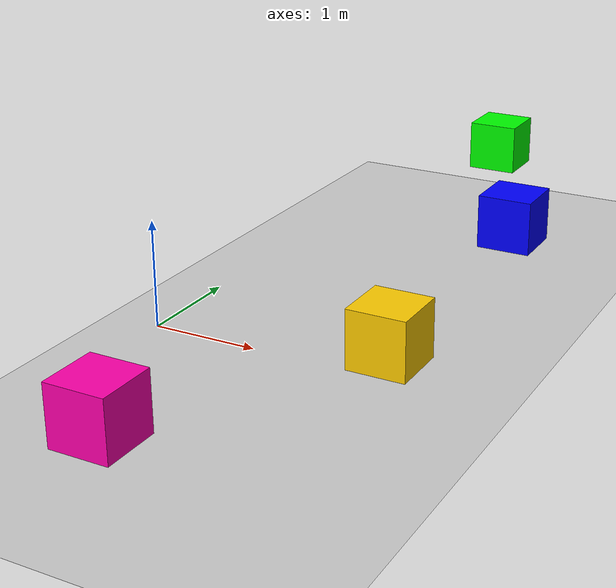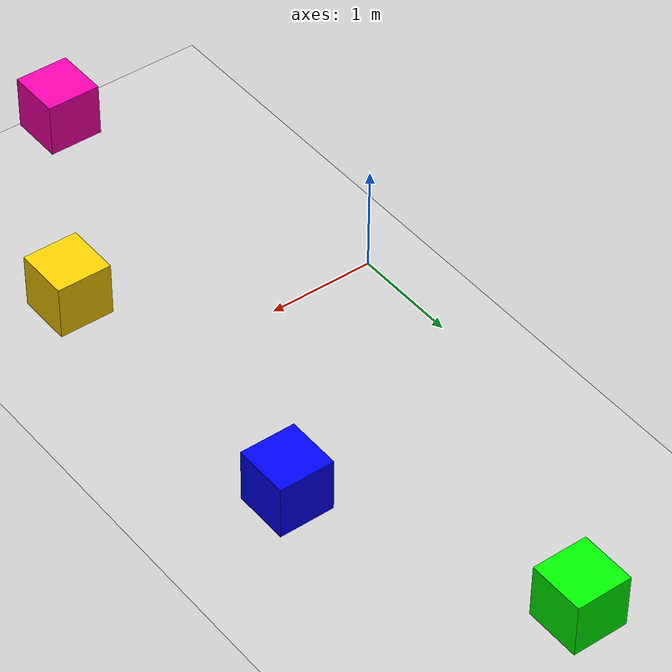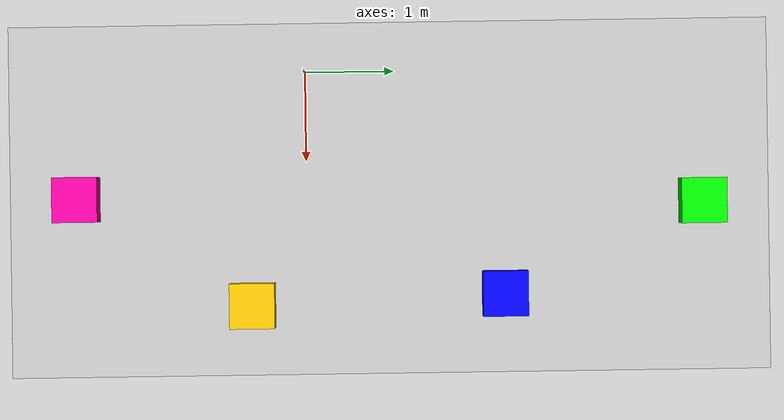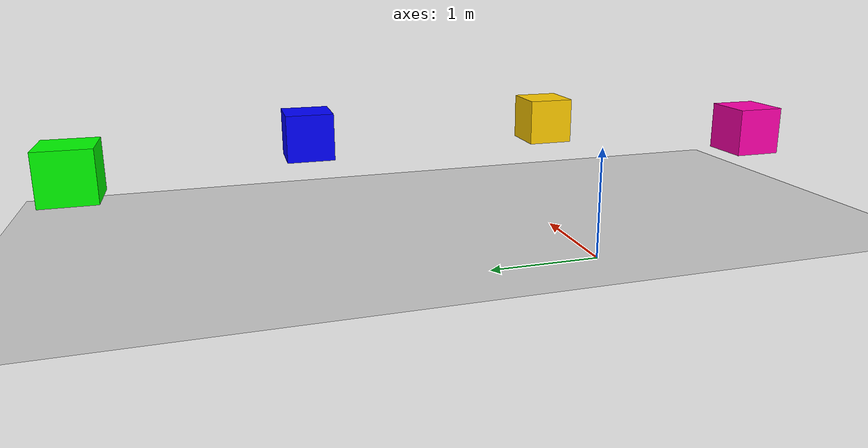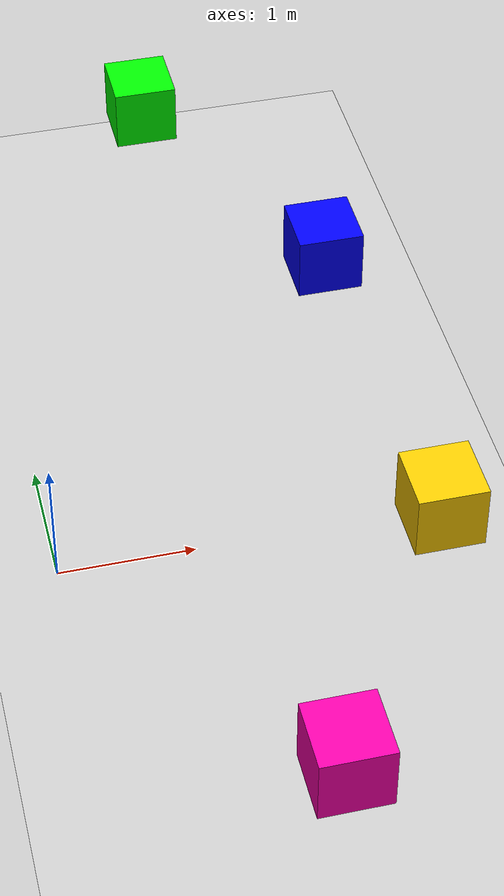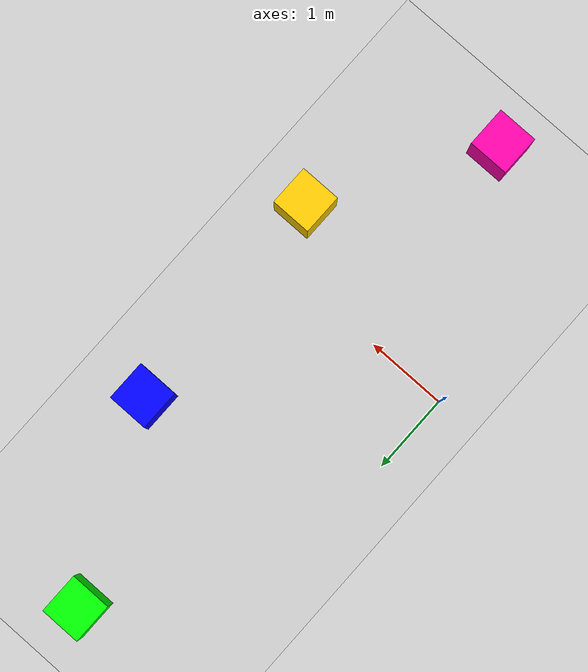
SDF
<sdf version="1.4">
  <world name="default">
    <scene>
      <ambient>0.8 0.8 0.8 1</ambient>
      <background>0.7 0.7 0.7 1</background>
      <shadows>true</shadows>
    </scene>

    <!-- A global light source -->
    <include>
      <uri>model://sun</uri>
      <pose> -2.0 2.0 2.0 0 0 0</pose>
    </include>

    <!-- A ground plane -->
    <include>
      <uri>model://ground_plane</uri>
    </include>

  <!-- caixa_majenta -->
    <include>
      <uri>model://caixas/caixa_majenta</uri>
      <pose> 1.4 -2.54 0.75 0 0 0</pose>
    </include>

  <!-- caixa_verde -->
    <include>
      <uri>model://caixas/caixa_verde</uri>
      <pose> 1.5 4.4 0.75 0 0 0</pose>
    </include>

  <!-- caixa_azul -->
    <include>
      <uri>model://caixas/caixa_azul</uri>
      <pose> 2.5 2.2 0.75 0 0 0</pose>
    </include>

 <!-- caixa_amarela -->
    <include>
      <uri>model://caixas/caixa_amarela</uri>
      <pose> 2.6 -0.6 0.75 0 0 0</pose>
    </include>

    <physics type="ode">
      <real_time_update_rate>1000.0</real_time_update_rate>
      <max_step_size>0.001</max_step_size>
      <real_time_factor>1</real_time_factor>
      <ode>
        <solver>
          <type>quick</type>
          <iters>150</iters>
          <precon_iters>0</precon_iters>
          <sor>1.400000</sor>
          <use_dynamic_moi_rescaling>1</use_dynamic_moi_rescaling>
        </solver>
        <constraints>
          <cfm>0.00001</cfm>
          <erp>0.2</erp>
          <contact_max_correcting_vel>2000.000000</contact_max_correcting_vel>
          <contact_surface_layer>0.01000</contact_surface_layer>
        </constraints>
      </ode>
    </physics>

    <gui fullscreen='0'>
      <camera name='user_camera'>
        <pose frame=''>0.238775 -6.8831 10.8485 -0 0.979642 1.5602</pose>
        <view_controller>orbit</view_controller>
        <projection_type>perspective</projection_type>
      </camera>
    </gui>

  </world>

</sdf>

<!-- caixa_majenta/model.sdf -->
<sdf version='1.6'>
  <model name='cubo_majenta'>
    <link name='link'>
      <inertial>
        <mass>1</mass>
        <inertia>
          <ixx>0.166667</ixx>
          <ixy>0</ixy>
          <ixz>0</ixz>
          <iyy>0.166667</iyy>
          <iyz>0</iyz>
          <izz>0.166667</izz>
        </inertia>
        <pose frame=''>0 0 0 0 -0 0</pose>
      </inertial>
      <self_collide>0</self_collide>
      <enable_wind>0</enable_wind>
      <kinematic>0</kinematic>
      <pose frame=''>0 0 0 0 -0 0</pose>
      <gravity>1</gravity>
      <visual name='visual'>
        <geometry>
          <box>
            <size>0.5 0.5 0.5</size>
          </box>
        </geometry>
        <material>
          <script>
            <name>Gazebo/Grey</name>
            <uri>file://media/materials/scripts/gazebo.material</uri>
          </script>
          <shader type='vertex'>
            <normal_map>__default__</normal_map>
          </shader>
          <ambient>1 0 0.67 1</ambient>
          <diffuse>1 0 0.67 1</diffuse>
          <specular>1 0 0.67 1</specular>
          <emissive>1 0 0.67 1</emissive>
        </material>
        <pose frame=''>0 0 0 0 -0 0</pose>
        <transparency>0</transparency>
        <cast_shadows>1</cast_shadows>
      </visual>
      <collision name='collision'>
        <laser_retro>0</laser_retro>
        <max_contacts>10</max_contacts>
        <pose frame=''>0 0 0 0 -0 0</pose>
        <geometry>
          <box>
            <size>0.5 0.5 0.5</size>
          </box>
        </geometry>
        <surface>
          <friction>
            <ode>
              <mu>1</mu>
              <mu2>1</mu2>
              <fdir1>0 0 0</fdir1>
              <slip1>0</slip1>
              <slip2>0</slip2>
            </ode>
            <torsional>
              <coefficient>1</coefficient>
              <patch_radius>0</patch_radius>
              <surface_radius>0</surface_radius>
              <use_patch_radius>1</use_patch_radius>
              <ode>
                <slip>0</slip>
              </ode>
            </torsional>
          </friction>
          <bounce>
            <restitution_coefficient>0</restitution_coefficient>
            <threshold>1e+06</threshold>
          </bounce>
          <contact>
            <collide_without_contact>0</collide_without_contact>
            <collide_without_contact_bitmask>1</collide_without_contact_bitmask>
            <collide_bitmask>1</collide_bitmask>
            <ode>
              <soft_cfm>0</soft_cfm>
              <soft_erp>0.2</soft_erp>
              <kp>1e+13</kp>
              <kd>1</kd>
              <max_vel>0.01</max_vel>
              <min_depth>0</min_depth>
            </ode>
            <bullet>
              <split_impulse>1</split_impulse>
              <split_impulse_penetration_threshold>-0.01</split_impulse_penetration_threshold>
              <soft_cfm>0</soft_cfm>
              <soft_erp>0.2</soft_erp>
              <kp>1e+13</kp>
              <kd>1</kd>
            </bullet>
          </contact>
        </surface>
      </collision>
    </link>
    <static>0</static>
    <allow_auto_disable>1</allow_auto_disable>
  </model>
</sdf>

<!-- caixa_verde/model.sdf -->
<sdf version='1.6'>
  <model name='cubo_verde'>
    <link name='link'>
      <inertial>
        <mass>1</mass>
        <inertia>
          <ixx>0.166667</ixx>
          <ixy>0</ixy>
          <ixz>0</ixz>
          <iyy>0.166667</iyy>
          <iyz>0</iyz>
          <izz>0.166667</izz>
        </inertia>
        <pose frame=''>0 0 0 0 -0 0</pose>
      </inertial>
      <self_collide>0</self_collide>
      <enable_wind>0</enable_wind>
      <kinematic>0</kinematic>
      <pose frame=''>0 0 0 0 -0 0</pose>
      <gravity>1</gravity>
      <visual name='visual'>
        <geometry>
          <box>
            <size>0.5 0.5 0.5</size>
          </box>
        </geometry>
        <material>
          <script>
            <name>Gazebo/Grey</name>
            <uri>file://media/materials/scripts/gazebo.material</uri>
          </script>
          <shader type='vertex'>
            <normal_map>__default__</normal_map>
          </shader>
          <ambient>0 1 0 1</ambient>
          <diffuse>0 1 0 1</diffuse>
          <specular>0 1 0 1</specular>
          <emissive>0 1 0 1</emissive>
        </material>
        <pose frame=''>0 0 0 0 -0 0</pose>
        <transparency>0</transparency>
        <cast_shadows>1</cast_shadows>
      </visual>
      <collision name='collision'>
        <laser_retro>0</laser_retro>
        <max_contacts>10</max_contacts>
        <pose frame=''>0 0 0 0 -0 0</pose>
        <geometry>
          <box>
            <size>0.5 0.5 0.5</size>
          </box>
        </geometry>
        <surface>
          <friction>
            <ode>
              <mu>1</mu>
              <mu2>1</mu2>
              <fdir1>0 0 0</fdir1>
              <slip1>0</slip1>
              <slip2>0</slip2>
            </ode>
            <torsional>
              <coefficient>1</coefficient>
              <patch_radius>0</patch_radius>
              <surface_radius>0</surface_radius>
              <use_patch_radius>1</use_patch_radius>
              <ode>
                <slip>0</slip>
              </ode>
            </torsional>
          </friction>
          <bounce>
            <restitution_coefficient>0</restitution_coefficient>
            <threshold>1e+06</threshold>
          </bounce>
          <contact>
            <collide_without_contact>0</collide_without_contact>
            <collide_without_contact_bitmask>1</collide_without_contact_bitmask>
            <collide_bitmask>1</collide_bitmask>
            <ode>
              <soft_cfm>0</soft_cfm>
              <soft_erp>0.2</soft_erp>
              <kp>1e+13</kp>
              <kd>1</kd>
              <max_vel>0.01</max_vel>
              <min_depth>0</min_depth>
            </ode>
            <bullet>
              <split_impulse>1</split_impulse>
              <split_impulse_penetration_threshold>-0.01</split_impulse_penetration_threshold>
              <soft_cfm>0</soft_cfm>
              <soft_erp>0.2</soft_erp>
              <kp>1e+13</kp>
              <kd>1</kd>
            </bullet>
          </contact>
        </surface>
      </collision>
    </link>
    <static>0</static>
    <allow_auto_disable>1</allow_auto_disable>
  </model>
</sdf>

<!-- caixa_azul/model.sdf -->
<sdf version='1.6'>
  <model name='cubo_azul'>
    <link name='link'>
      <inertial>
        <mass>1</mass>
        <inertia>
          <ixx>0.166667</ixx>
          <ixy>0</ixy>
          <ixz>0</ixz>
          <iyy>0.166667</iyy>
          <iyz>0</iyz>
          <izz>0.166667</izz>
        </inertia>
        <pose frame=''>0 0 0 0 -0 0</pose>
      </inertial>
      <self_collide>0</self_collide>
      <enable_wind>0</enable_wind>
      <kinematic>0</kinematic>
      <pose frame=''>0 0 0 0 -0 0</pose>
      <gravity>1</gravity>
      <visual name='visual'>
        <geometry>
          <box>
            <size>0.5 0.5 0.5</size>
          </box>
        </geometry>
        <material>
          <script>
            <name>Gazebo/Grey</name>
            <uri>file://media/materials/scripts/gazebo.material</uri>
          </script>
          <shader type='vertex'>
            <normal_map>__default__</normal_map>
          </shader>
          <ambient>0 0 1 1</ambient>
          <diffuse>0 0 1 1</diffuse>
          <specular>0 0 1 1</specular>
          <emissive>0 0 1 1</emissive>
        </material>
        <pose frame=''>0 0 0 0 -0 0</pose>
        <transparency>0</transparency>
        <cast_shadows>1</cast_shadows>
      </visual>
      <collision name='collision'>
        <laser_retro>0</laser_retro>
        <max_contacts>10</max_contacts>
        <pose frame=''>0 0 0 0 -0 0</pose>
        <geometry>
          <box>
            <size>0.5 0.5 0.5</size>
          </box>
        </geometry>
        <surface>
          <friction>
            <ode>
              <mu>1</mu>
              <mu2>1</mu2>
              <fdir1>0 0 0</fdir1>
              <slip1>0</slip1>
              <slip2>0</slip2>
            </ode>
            <torsional>
              <coefficient>1</coefficient>
              <patch_radius>0</patch_radius>
              <surface_radius>0</surface_radius>
              <use_patch_radius>1</use_patch_radius>
              <ode>
                <slip>0</slip>
              </ode>
            </torsional>
          </friction>
          <bounce>
            <restitution_coefficient>0</restitution_coefficient>
            <threshold>1e+06</threshold>
          </bounce>
          <contact>
            <collide_without_contact>0</collide_without_contact>
            <collide_without_contact_bitmask>1</collide_without_contact_bitmask>
            <collide_bitmask>1</collide_bitmask>
            <ode>
              <soft_cfm>0</soft_cfm>
              <soft_erp>0.2</soft_erp>
              <kp>1e+13</kp>
              <kd>1</kd>
              <max_vel>0.01</max_vel>
              <min_depth>0</min_depth>
            </ode>
            <bullet>
              <split_impulse>1</split_impulse>
              <split_impulse_penetration_threshold>-0.01</split_impulse_penetration_threshold>
              <soft_cfm>0</soft_cfm>
              <soft_erp>0.2</soft_erp>
              <kp>1e+13</kp>
              <kd>1</kd>
            </bullet>
          </contact>
        </surface>
      </collision>
    </link>
    <static>0</static>
    <allow_auto_disable>1</allow_auto_disable>
  </model>
</sdf>

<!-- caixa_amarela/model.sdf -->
<sdf version='1.6'>
  <model name='cubo_amarelo'>
    <link name='link'>
      <inertial>
        <mass>1</mass>
        <inertia>
          <ixx>0.166667</ixx>
          <ixy>0</ixy>
          <ixz>0</ixz>
          <iyy>0.166667</iyy>
          <iyz>0</iyz>
          <izz>0.166667</izz>
        </inertia>
        <pose frame=''>0 0 0 0 -0 0</pose>
      </inertial>
      <self_collide>0</self_collide>
      <enable_wind>0</enable_wind>
      <kinematic>0</kinematic>
      <pose frame=''>0 0 0 0 -0 0</pose>
      <gravity>1</gravity>
      <visual name='visual'>
        <geometry>
          <box>
            <size>0.5 0.5 0.5</size>
          </box>
        </geometry>
        <material>
          <script>
            <name>Gazebo/Grey</name>
            <uri>file://media/materials/scripts/gazebo.material</uri>
          </script>
          <shader type='vertex'>
            <normal_map>__default__</normal_map>
          </shader>
          <ambient>1 0.8 0 1</ambient>
          <diffuse>1 0.8 0 1</diffuse>
          <specular>1 0.8 0 1</specular>
          <emissive>1 0.8 0 1</emissive>
        </material>
        <pose frame=''>0 0 0 0 -0 0</pose>
        <transparency>0</transparency>
        <cast_shadows>1</cast_shadows>
      </visual>
      <collision name='collision'>
        <laser_retro>0</laser_retro>
        <max_contacts>10</max_contacts>
        <pose frame=''>0 0 0 0 -0 0</pose>
        <geometry>
          <box>
            <size>0.5 0.5 0.5</size>
          </box>
        </geometry>
        <surface>
          <friction>
            <ode>
              <mu>1</mu>
              <mu2>1</mu2>
              <fdir1>0 0 0</fdir1>
              <slip1>0</slip1>
              <slip2>0</slip2>
            </ode>
            <torsional>
              <coefficient>1</coefficient>
              <patch_radius>0</patch_radius>
              <surface_radius>0</surface_radius>
              <use_patch_radius>1</use_patch_radius>
              <ode>
                <slip>0</slip>
              </ode>
            </torsional>
          </friction>
          <bounce>
            <restitution_coefficient>0</restitution_coefficient>
            <threshold>1e+06</threshold>
          </bounce>
          <contact>
            <collide_without_contact>0</collide_without_contact>
            <collide_without_contact_bitmask>1</collide_without_contact_bitmask>
            <collide_bitmask>1</collide_bitmask>
            <ode>
              <soft_cfm>0</soft_cfm>
              <soft_erp>0.2</soft_erp>
              <kp>1e+13</kp>
              <kd>1</kd>
              <max_vel>0.01</max_vel>
              <min_depth>0</min_depth>
            </ode>
            <bullet>
              <split_impulse>1</split_impulse>
              <split_impulse_penetration_threshold>-0.01</split_impulse_penetration_threshold>
              <soft_cfm>0</soft_cfm>
              <soft_erp>0.2</soft_erp>
              <kp>1e+13</kp>
              <kd>1</kd>
            </bullet>
          </contact>
        </surface>
      </collision>
    </link>
    <static>0</static>
    <allow_auto_disable>1</allow_auto_disable>
  </model>
</sdf>
